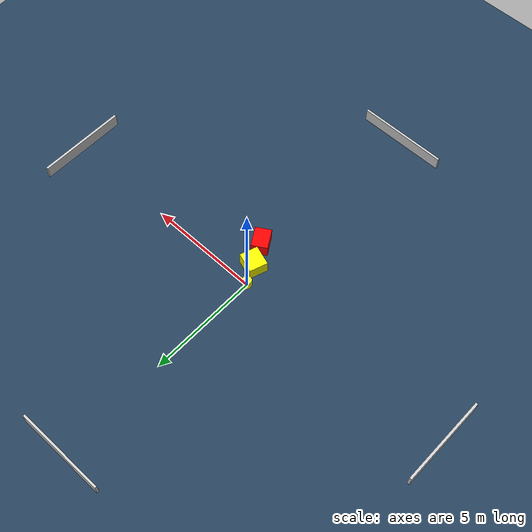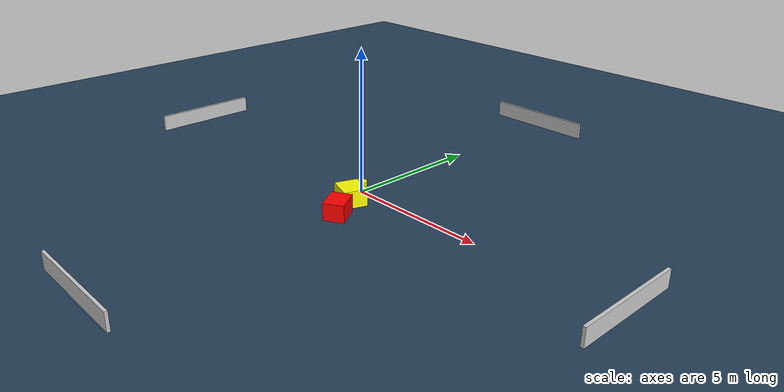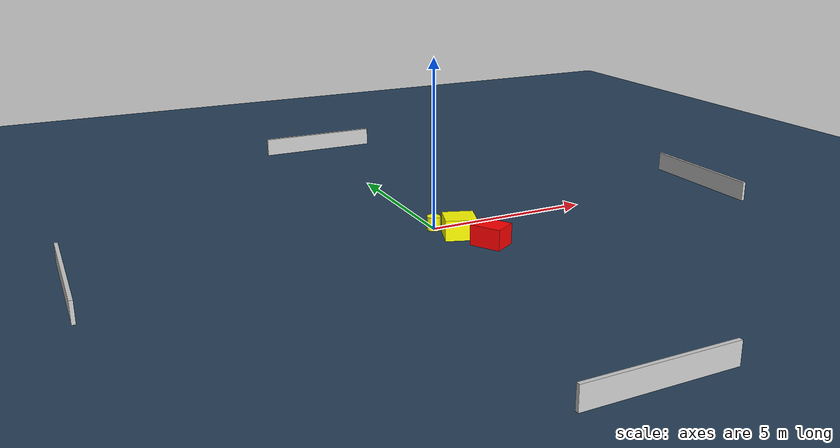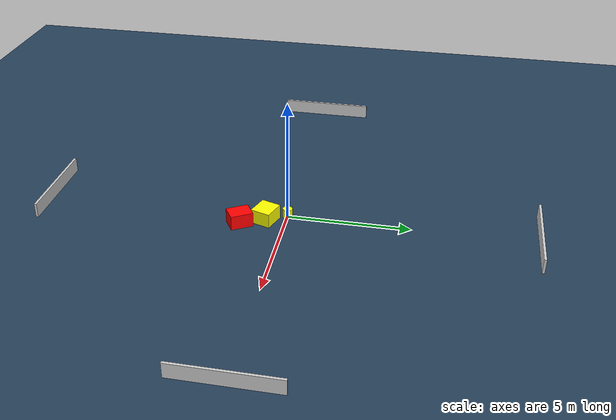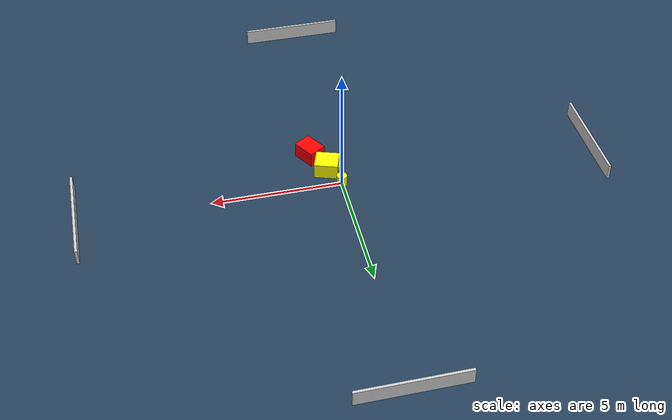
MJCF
<?xml version="1.0" ?>
<mujoco model="generated_environment">
  <option timestep="0.01" integrator="RK4" cone="elliptic"/>
  <default>
    <geom density="1"/>
  </default>
  <asset>
    <texture builtin="gradient" height="3072" name="skybox" rgb1="0.3 0.5 0.7" rgb2="0 0 0" type="skybox" width="512"/>
    <texture builtin="checker" height="300" name="groundplane" rgb1="0.2 0.3 0.4" rgb2="0.1 0.2 0.3" type="2d" width="300"/>
    <material name="groundplane" reflectance="0.2" texrepeat="5 5" texture="groundplane"/>
  </asset>
  <worldbody>
    <light dir="0 0 -1" directional="true" pos="0 0 1.5"/>
    <geom condim="3" friction="0.5 0.005 0.001" material="groundplane" name="floor" pos="0 0 0" size="0 0 0.05" type="plane"/>
    <body name="walls">
      <geom name="wall_1" condim="4" pos="-10.0 0.0 0.3" rgba="0.800000011920929 0.800000011920929 0.800000011920929 1.0" size="0.05 2.0 0.3" type="box"/>
      <geom name="wall_2" condim="4" pos="10.0 0.0 0.3" rgba="0.800000011920929 0.800000011920929 0.800000011920929 1.0" size="0.05 2.0 0.3" type="box"/>
      <geom name="wall_3" condim="4" pos="0.0 -10.0 0.3" rgba="0.800000011920929 0.800000011920929 0.800000011920929 1.0" size="2.0 0.05 0.3" type="box"/>
      <geom name="wall_4" condim="4" pos="0.0 10.0 0.3" rgba="0.800000011920929 0.800000011920929 0.800000011920929 1.0" size="2.0 0.05 0.3" type="box"/>
    </body>
    <body name="robot">
      <joint name="joint_x" type="slide" pos="0 0 0" axis="1 0 0"/>
      <joint name="joint_y" type="slide" pos="0 0 0" axis="0 1 0"/>
      <geom name="robot" type="cylinder" pos="0.0 0.0 0.2" size="0.2 0.2 0.0" mass="5.0" friction="1.0 0.005 0.0001" condim="4" rgba="1.0 1.0 0.0 1.0"/>
    </body>
    <body name="obstacle_1_movable">
      <geom name="obstacle_1_movable" condim="4" pos="0.4049488131419348 -0.8181407160830485 0.3" euler="0 0 341.1450556689421" friction="0.0 0.005 0.001" rgba="1.0 1.0 0.0 1.0" size="0.45214924688103675 0.41060337919180634 0.3" type="box" mass="0.1"/>
      <joint type="free"/>
    </body>
    <body name="obstacle_2_static">
      <geom name="obstacle_2_static" condim="4" pos="0.8778681659918319 -1.787849333608318 0.3" euler="0 0 301.26087136885616" friction="0.0 0.005 0.001" rgba="1.0 0.0 0.0 1.0" size="0.4590531791160826 0.3563329329347166 0.3" type="box"/>
    </body>
  </worldbody>
  <actuator>
    <motor name="actuator_x" joint="joint_x" gear="1" ctrlrange="-1 1"/>
    <motor name="actuator_y" joint="joint_y" gear="1" ctrlrange="-1 1"/>
  </actuator>
</mujoco>
